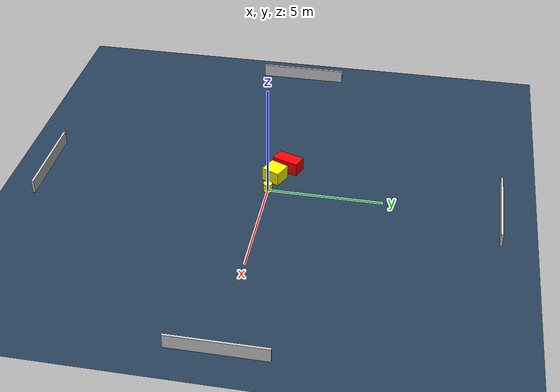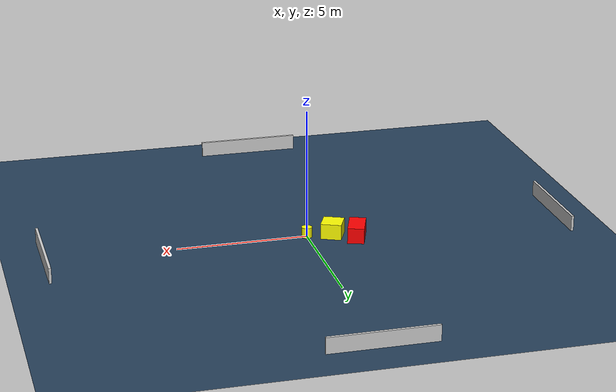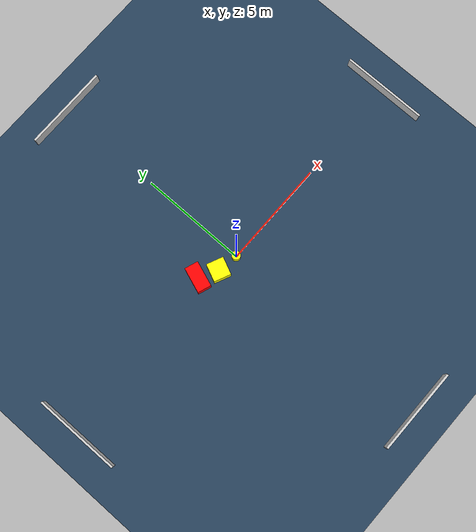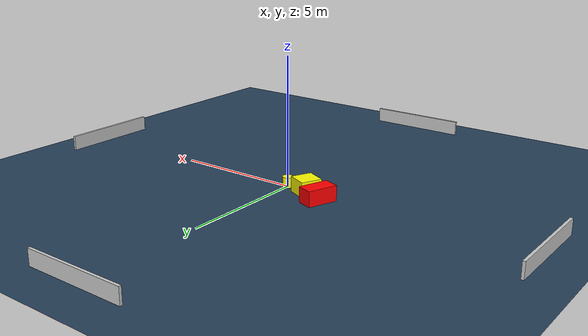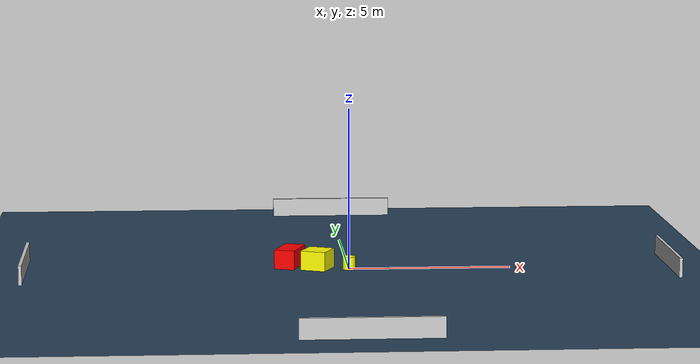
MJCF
<?xml version="1.0" ?>
<mujoco model="generated_environment">
  <option timestep="0.01" integrator="RK4" cone="elliptic"/>
  <default>
    <geom density="1"/>
  </default>
  <asset>
    <texture builtin="gradient" height="3072" name="skybox" rgb1="0.3 0.5 0.7" rgb2="0 0 0" type="skybox" width="512"/>
    <texture builtin="checker" height="300" name="groundplane" rgb1="0.2 0.3 0.4" rgb2="0.1 0.2 0.3" type="2d" width="300"/>
    <material name="groundplane" reflectance="0.2" texrepeat="5 5" texture="groundplane"/>
  </asset>
  <worldbody>
    <light dir="0 0 -1" directional="true" pos="0 0 1.5"/>
    <geom condim="3" friction="0.5 0.005 0.001" material="groundplane" name="floor" pos="0 0 0" size="0 0 0.05" type="plane"/>
    <body name="walls">
      <geom name="wall_1" condim="4" pos="-10.0 0.0 0.3" rgba="0.800000011920929 0.800000011920929 0.800000011920929 1.0" size="0.05 2.0 0.3" type="box"/>
      <geom name="wall_2" condim="4" pos="10.0 0.0 0.3" rgba="0.800000011920929 0.800000011920929 0.800000011920929 1.0" size="0.05 2.0 0.3" type="box"/>
      <geom name="wall_3" condim="4" pos="0.0 -10.0 0.3" rgba="0.800000011920929 0.800000011920929 0.800000011920929 1.0" size="2.0 0.05 0.3" type="box"/>
      <geom name="wall_4" condim="4" pos="0.0 10.0 0.3" rgba="0.800000011920929 0.800000011920929 0.800000011920929 1.0" size="2.0 0.05 0.3" type="box"/>
    </body>
    <body name="robot">
      <joint name="joint_x" type="slide" pos="0 0 0" axis="1 0 0"/>
      <joint name="joint_y" type="slide" pos="0 0 0" axis="0 1 0"/>
      <geom name="robot" type="cylinder" pos="0.0 0.0 0.2" size="0.2 0.2 0.0" mass="5.0" friction="1.0 0.005 0.0001" condim="4" rgba="1.0 1.0 0.0 1.0"/>
    </body>
    <body name="obstacle_1_movable">
      <geom name="obstacle_1_movable" condim="4" pos="-0.9727434672666005 0.14590576682022738 0.3" euler="0 0 65.63989170515912" friction="0.0 0.005 0.001" rgba="1.0 1.0 0.0 1.0" size="0.4151692763853341 0.3975617255964138 0.3" type="box" mass="0.1"/>
      <joint type="free"/>
    </body>
    <body name="obstacle_2_static">
      <geom name="obstacle_2_static" condim="4" pos="-1.8060518762976152 0.5941216715398852 0.3" euler="0 0 250.32834023662556" friction="0.0 0.005 0.001" rgba="1.0 0.0 0.0 1.0" size="0.5937530213310085 0.31818355938462684 0.3" type="box"/>
    </body>
  </worldbody>
  <actuator>
    <motor name="actuator_x" joint="joint_x" gear="1" ctrlrange="-1 1"/>
    <motor name="actuator_y" joint="joint_y" gear="1" ctrlrange="-1 1"/>
  </actuator>
</mujoco>
